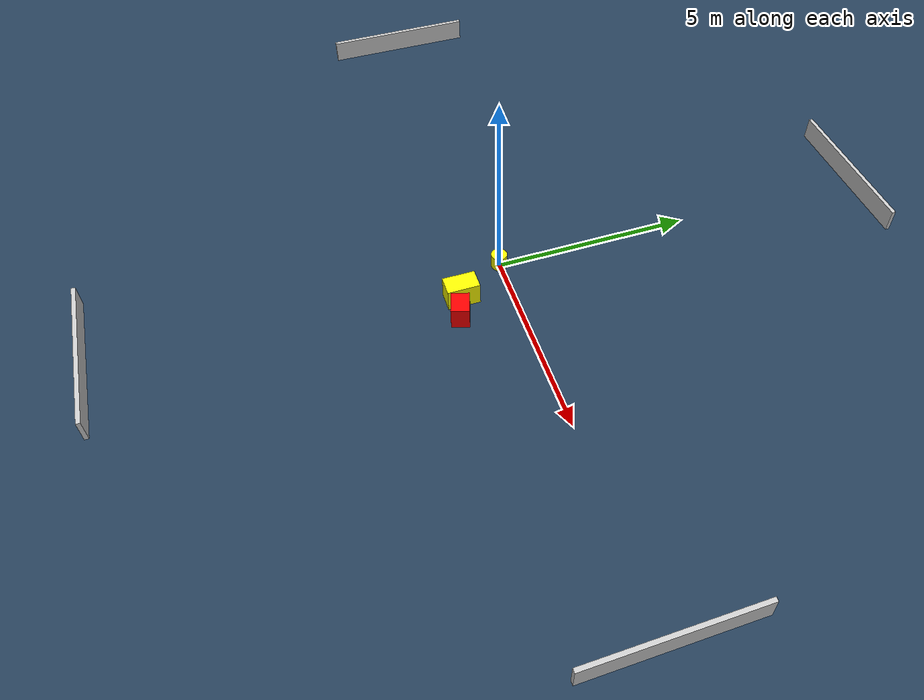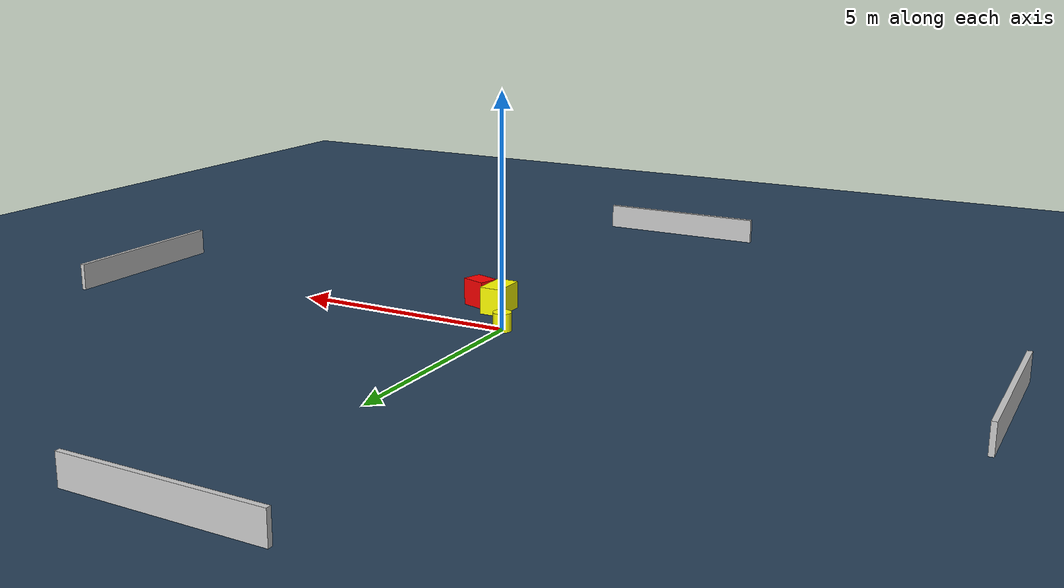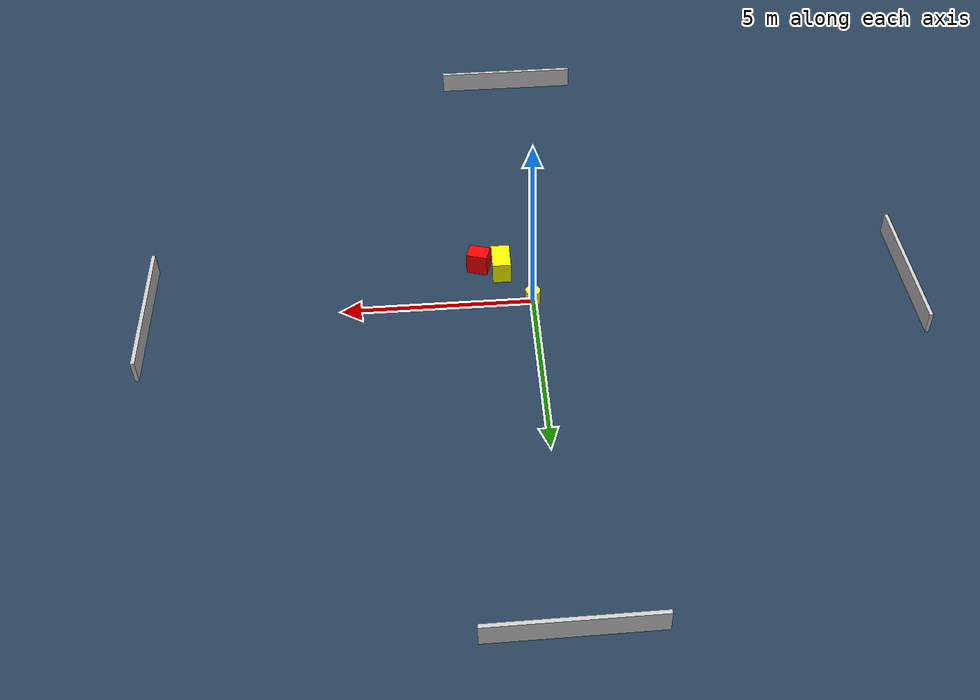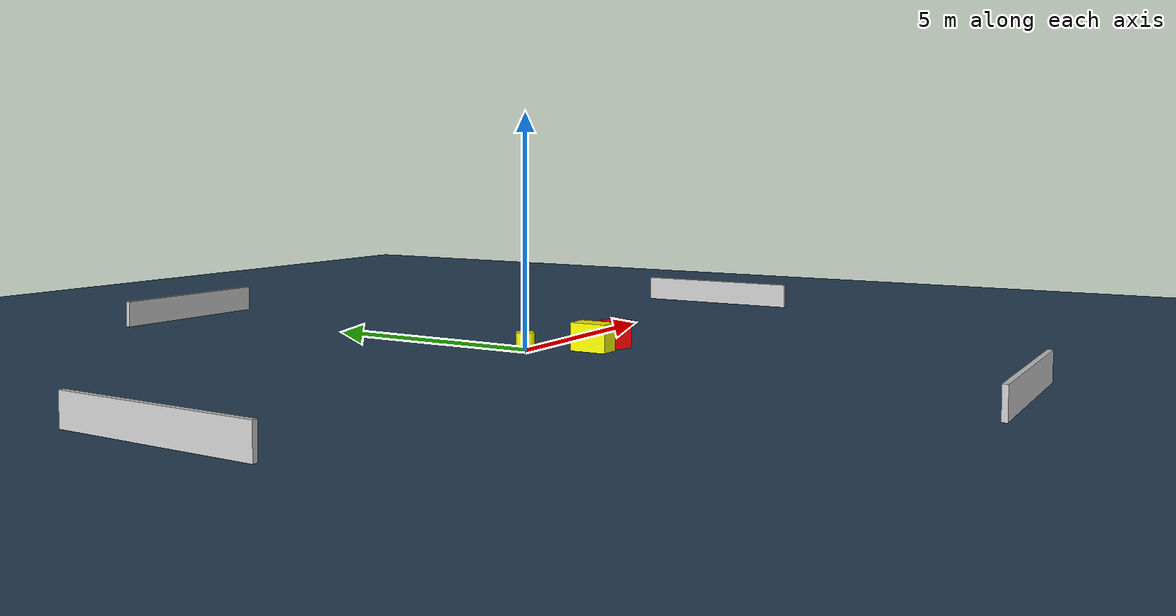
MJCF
<?xml version="1.0" ?>
<mujoco model="generated_environment">
  <option timestep="0.01" integrator="RK4" cone="elliptic"/>
  <default>
    <geom density="1"/>
  </default>
  <asset>
    <texture builtin="gradient" height="3072" name="skybox" rgb1="0.3 0.5 0.7" rgb2="0 0 0" type="skybox" width="512"/>
    <texture builtin="checker" height="300" name="groundplane" rgb1="0.2 0.3 0.4" rgb2="0.1 0.2 0.3" type="2d" width="300"/>
    <material name="groundplane" reflectance="0.2" texrepeat="5 5" texture="groundplane"/>
  </asset>
  <worldbody>
    <light dir="0 0 -1" directional="true" pos="0 0 1.5"/>
    <geom condim="3" friction="0.5 0.005 0.001" material="groundplane" name="floor" pos="0 0 0" size="0 0 0.05" type="plane"/>
    <body name="walls">
      <geom name="wall_1" condim="4" pos="-10.0 0.0 0.3" rgba="0.800000011920929 0.800000011920929 0.800000011920929 1.0" size="0.05 2.0 0.3" type="box"/>
      <geom name="wall_2" condim="4" pos="10.0 0.0 0.3" rgba="0.800000011920929 0.800000011920929 0.800000011920929 1.0" size="0.05 2.0 0.3" type="box"/>
      <geom name="wall_3" condim="4" pos="0.0 -10.0 0.3" rgba="0.800000011920929 0.800000011920929 0.800000011920929 1.0" size="2.0 0.05 0.3" type="box"/>
      <geom name="wall_4" condim="4" pos="0.0 10.0 0.3" rgba="0.800000011920929 0.800000011920929 0.800000011920929 1.0" size="2.0 0.05 0.3" type="box"/>
    </body>
    <body name="robot">
      <joint name="joint_x" type="slide" pos="0 0 0" axis="1 0 0"/>
      <joint name="joint_y" type="slide" pos="0 0 0" axis="0 1 0"/>
      <geom name="robot" type="cylinder" pos="0.0 0.0 0.2" size="0.2 0.2 0.0" mass="5.0" friction="1.0 0.005 0.0001" condim="4" rgba="1.0 1.0 0.0 1.0"/>
    </body>
    <body name="obstacle_1_movable">
      <geom name="obstacle_1_movable" condim="4" pos="0.7554833079517655 -1.212534220232385 0.3" euler="0 0 179.86299775037986" friction="0.0 0.005 0.001" rgba="1.0 1.0 0.0 1.0" size="0.24515233311586443 0.403438440769028 0.3" type="box" mass="0.1"/>
      <joint type="free"/>
    </body>
    <body name="obstacle_2_static">
      <geom name="obstacle_2_static" condim="4" pos="1.3452773259294595 -1.416458687119496 0.3" euler="0 0 342.4450356152792" friction="0.0 0.005 0.001" rgba="1.0 0.0 0.0 1.0" size="0.2801669874045023 0.22132877095780237 0.3" type="box"/>
    </body>
  </worldbody>
  <actuator>
    <motor name="actuator_x" joint="joint_x" gear="1" ctrlrange="-1 1"/>
    <motor name="actuator_y" joint="joint_y" gear="1" ctrlrange="-1 1"/>
  </actuator>
</mujoco>
